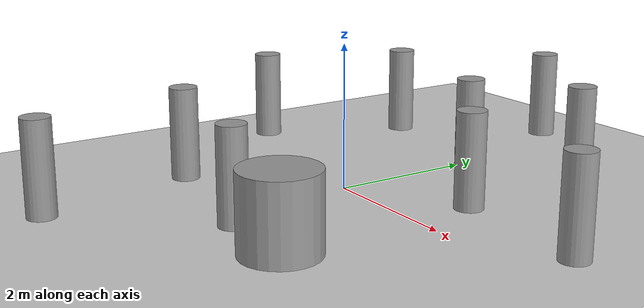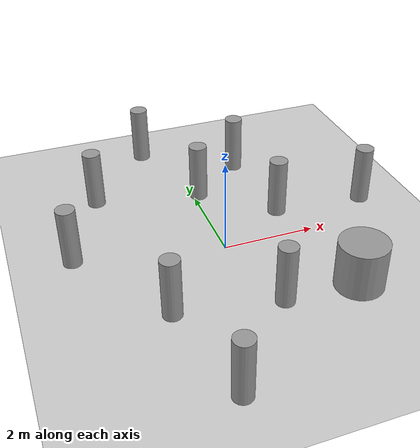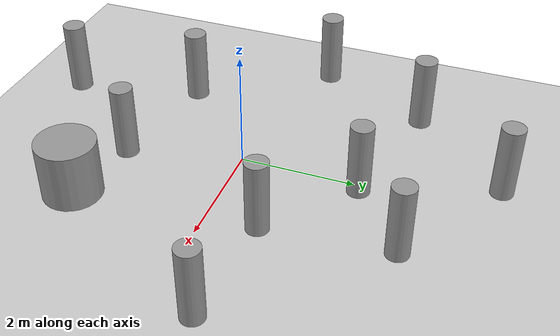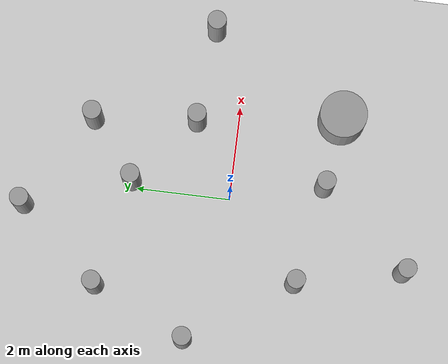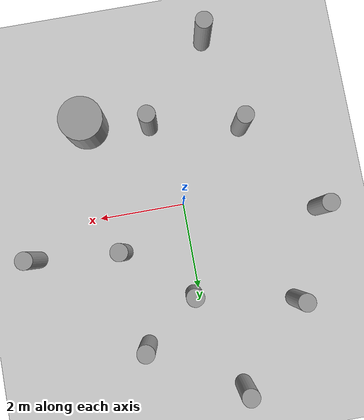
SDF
<sdf version="1.7">
 <world name="default">
  <light name="sun" type="directional">
   <pose>0 0 10 0 -0 0</pose>
   <diffuse>0.8 0.8 0.8 1</diffuse>
   <specular>0.2 0.2 0.2 1</specular>
   <attenuation>
    <range>1000</range>
    <constant>0.9</constant>
    <linear>0.01</linear>
    <quadratic>0.001</quadratic>
   </attenuation>
   <direction>-0.5 0.1 -0.9</direction>
   <spot><inner_angle>0</inner_angle><outer_angle>0</outer_angle><falloff>0</falloff></spot>
  </light>
  <model name="ground_plane">
   <static>1</static>
   <link name="link">
    <collision name="collision">
     <geometry><plane><normal>0 0 1</normal><size>100 100</size></plane></geometry>
     <surface>
      <contact><collide_bitmask>65535</collide_bitmask></contact>
      <friction><ode><mu>100</mu><mu2>50</mu2></ode></friction>
     </surface>
    </collision>
    <visual name="visual">
     <cast_shadows>0</cast_shadows>
     <geometry><plane><normal>0 0 1</normal><size>100 100</size></plane></geometry>
     <material>
      <script><uri>file://media/materials/scripts/gazebo.material</uri><name>Gazebo/Grey</name></script>
     </material>
    </visual>
   </link>
  </model>
  <gravity>0 0 -9.8</gravity>
  <magnetic_field>6e-06 2.3e-05 -4.2e-05</magnetic_field>
  <atmosphere type="adiabatic"/>
  <physics type="ode">
   <max_step_size>0.001</max_step_size>
   <real_time_factor>1</real_time_factor>
   <real_time_update_rate>1000</real_time_update_rate>
  </physics>
  <scene><ambient>0.4 0.4 0.4 1</ambient><background>0.7 0.7 0.7 1</background><shadows>1</shadows></scene>
  <spherical_coordinates>
   <surface_model>EARTH_WGS84</surface_model>
   <latitude_deg>0</latitude_deg>
   <longitude_deg>0</longitude_deg>
   <elevation>0</elevation>
   <heading_deg>0</heading_deg>
  </spherical_coordinates>
  <model name="unit_cylinder">
   <pose>1.93591 -2.16913 0.654191 0 -0 3.8e-05</pose>
   <link name="link">
    <inertial>
     <mass>1</mass>
     <inertia><ixx>0.145833</ixx><ixy>0</ixy><ixz>0</ixz><iyy>0.145833</iyy><iyz>0</iyz><izz>0.125</izz></inertia>
    </inertial>
    <collision name="collision">
     <geometry><cylinder><radius>0.500002</radius><length>1</length></cylinder></geometry>
    </collision>
    <visual name="visual">
     <geometry><cylinder><radius>0.500002</radius><length>1</length></cylinder></geometry>
     <material>
      <script><name>Gazebo/Grey</name><uri>file://media/materials/scripts/gazebo.material</uri></script>
     </material>
    </visual>
   </link>
  </model>
  <model name="unit_cylinder_clone">
   <pose>-1.63988 -1.57681 0.654199 0 -0 4e-05</pose>
   <link name="link">
    <inertial>
     <mass>1</mass>
     <inertia><ixx>0.145833</ixx><ixy>0</ixy><ixz>0</ixz><iyy>0.145833</iyy><iyz>0</iyz><izz>0.125</izz></inertia>
    </inertial>
    <collision name="collision">
     <geometry><cylinder><radius>0.19859</radius><length>1.3084</length></cylinder></geometry>
    </collision>
    <visual name="visual">
     <geometry><cylinder><radius>0.19859</radius><length>1.3084</length></cylinder></geometry>
     <material>
      <script><name>Gazebo/Grey</name><uri>file://media/materials/scripts/gazebo.material</uri></script>
     </material>
    </visual>
   </link>
  </model>
  <model name="unit_cylinder_clone_0">
   <pose>-2.16842 2.62048 0.654192 0 -0 4e-05</pose>
   <link name="link">
    <inertial>
     <mass>1</mass>
     <inertia><ixx>0.145833</ixx><ixy>0</ixy><ixz>0</ixz><iyy>0.145833</iyy><iyz>0</iyz><izz>0.125</izz></inertia>
    </inertial>
    <collision name="collision">
     <geometry><cylinder><radius>0.19859</radius><length>1.3084</length></cylinder></geometry>
    </collision>
    <visual name="visual">
     <geometry><cylinder><radius>0.19859</radius><length>1.3084</length></cylinder></geometry>
     <material>
      <script><name>Gazebo/Grey</name><uri>file://media/materials/scripts/gazebo.material</uri></script>
     </material>
    </visual>
   </link>
  </model>
  <model name="unit_cylinder_clone_1">
   <pose>-3.08841 0.624646 0.654192 0 -0 4.1e-05</pose>
   <link name="link">
    <inertial>
     <mass>1</mass>
     <inertia><ixx>0.145833</ixx><ixy>0</ixy><ixz>0</ixz><iyy>0.145833</iyy><iyz>0</iyz><izz>0.125</izz></inertia>
    </inertial>
    <collision name="collision">
     <geometry><cylinder><radius>0.19859</radius><length>1.3084</length></cylinder></geometry>
    </collision>
    <visual name="visual">
     <geometry><cylinder><radius>0.19859</radius><length>1.3084</length></cylinder></geometry>
     <material>
      <script><name>Gazebo/Grey</name><uri>file://media/materials/scripts/gazebo.material</uri></script>
     </material>
    </visual>
   </link>
  </model>
  <model name="unit_cylinder_clone_2">
   <pose>1.35855 3.07221 0.654199 0 -0 4.1e-05</pose>
   <link name="link">
    <inertial>
     <mass>1</mass>
     <inertia><ixx>0.145833</ixx><ixy>0</ixy><ixz>0</ixz><iyy>0.145833</iyy><iyz>0</iyz><izz>0.125</izz></inertia>
    </inertial>
    <collision name="collision">
     <geometry><cylinder><radius>0.19859</radius><length>1.3084</length></cylinder></geometry>
    </collision>
    <visual name="visual">
     <geometry><cylinder><radius>0.19859</radius><length>1.3084</length></cylinder></geometry>
     <material>
      <script><name>Gazebo/Grey</name><uri>file://media/materials/scripts/gazebo.material</uri></script>
     </material>
    </visual>
   </link>
  </model>
  <model name="unit_cylinder_clone_3">
   <pose>-0.641966 4.33407 0.654192 0 -0 4.2e-05</pose>
   <link name="link">
    <inertial>
     <mass>1</mass>
     <inertia><ixx>0.145833</ixx><ixy>0</ixy><ixz>0</ixz><iyy>0.145833</iyy><iyz>0</iyz><izz>0.125</izz></inertia>
    </inertial>
    <collision name="collision">
     <geometry><cylinder><radius>0.19859</radius><length>1.3084</length></cylinder></geometry>
    </collision>
    <visual name="visual">
     <geometry><cylinder><radius>0.19859</radius><length>1.3084</length></cylinder></geometry>
     <material>
      <script><name>Gazebo/Grey</name><uri>file://media/materials/scripts/gazebo.material</uri></script>
     </material>
    </visual>
   </link>
  </model>
  <model name="unit_cylinder_clone_4">
   <pose>3.58271 0.707455 0.654191 0 -0 4.2e-05</pose>
   <link name="link">
    <inertial>
     <mass>1</mass>
     <inertia><ixx>0.145833</ixx><ixy>0</ixy><ixz>0</ixz><iyy>0.145833</iyy><iyz>0</iyz><izz>0.125</izz></inertia>
    </inertial>
    <collision name="collision">
     <geometry><cylinder><radius>0.19859</radius><length>1.3084</length></cylinder></geometry>
    </collision>
    <visual name="visual">
     <geometry><cylinder><radius>0.19859</radius><length>1.3084</length></cylinder></geometry>
     <material>
      <script><name>Gazebo/Grey</name><uri>file://media/materials/scripts/gazebo.material</uri></script>
     </material>
    </visual>
   </link>
  </model>
  <model name="unit_cylinder_clone_5">
   <pose>-1.13546 -3.82997 0.654191 0 -0 4.3e-05</pose>
   <link name="link">
    <inertial>
     <mass>1</mass>
     <inertia><ixx>0.145833</ixx><ixy>0</ixy><ixz>0</ixz><iyy>0.145833</iyy><iyz>0</iyz><izz>0.125</izz></inertia>
    </inertial>
    <collision name="collision">
     <geometry><cylinder><radius>0.19859</radius><length>1.3084</length></cylinder></geometry>
    </collision>
    <visual name="visual">
     <geometry><cylinder><radius>0.19859</radius><length>1.3084</length></cylinder></geometry>
     <material>
      <script><name>Gazebo/Grey</name><uri>file://media/materials/scripts/gazebo.material</uri></script>
     </material>
    </visual>
   </link>
  </model>
  <model name="unit_cylinder_clone_6">
   <pose>0.477101 -1.96917 0.654199 0 -0 4.4e-05</pose>
   <link name="link">
    <inertial>
     <mass>1</mass>
     <inertia><ixx>0.145833</ixx><ixy>0</ixy><ixz>0</ixz><iyy>0.145833</iyy><iyz>0</iyz><izz>0.125</izz></inertia>
    </inertial>
    <collision name="collision">
     <geometry><cylinder><radius>0.19859</radius><length>1.3084</length></cylinder></geometry>
    </collision>
    <visual name="visual">
     <geometry><cylinder><radius>0.19859</radius><length>1.3084</length></cylinder></geometry>
     <material>
      <script><name>Gazebo/Grey</name><uri>file://media/materials/scripts/gazebo.material</uri></script>
     </material>
    </visual>
   </link>
  </model>
  <model name="unit_cylinder_clone_7">
   <pose>0.130442 2.109 0.654191 0 -0 4.5e-05</pose>
   <link name="link">
    <inertial>
     <mass>1</mass>
     <inertia><ixx>0.145833</ixx><ixy>0</ixy><ixz>0</ixz><iyy>0.145833</iyy><iyz>0</iyz><izz>0.125</izz></inertia>
    </inertial>
    <collision name="collision">
     <geometry><cylinder><radius>0.19859</radius><length>1.3084</length></cylinder></geometry>
    </collision>
    <visual name="visual">
     <geometry><cylinder><radius>0.19859</radius><length>1.3084</length></cylinder></geometry>
     <material>
      <script><name>Gazebo/Grey</name><uri>file://media/materials/scripts/gazebo.material</uri></script>
     </material>
    </visual>
   </link>
  </model>
  <model name="unit_cylinder_clone_8">
   <pose>1.56404 0.8842 0.654199 0 -0 4.6e-05</pose>
   <link name="link">
    <inertial>
     <mass>1</mass>
     <inertia><ixx>0.145833</ixx><ixy>0</ixy><ixz>0</ixz><iyy>0.145833</iyy><iyz>0</iyz><izz>0.125</izz></inertia>
    </inertial>
    <collision name="collision">
     <geometry><cylinder><radius>0.19859</radius><length>1.3084</length></cylinder></geometry>
    </collision>
    <visual name="visual">
     <geometry><cylinder><radius>0.19859</radius><length>1.3084</length></cylinder></geometry>
     <material>
      <script><name>Gazebo/Grey</name><uri>file://media/materials/scripts/gazebo.material</uri></script>
     </material>
    </visual>
   </link>
  </model>
 </world>
</sdf>
